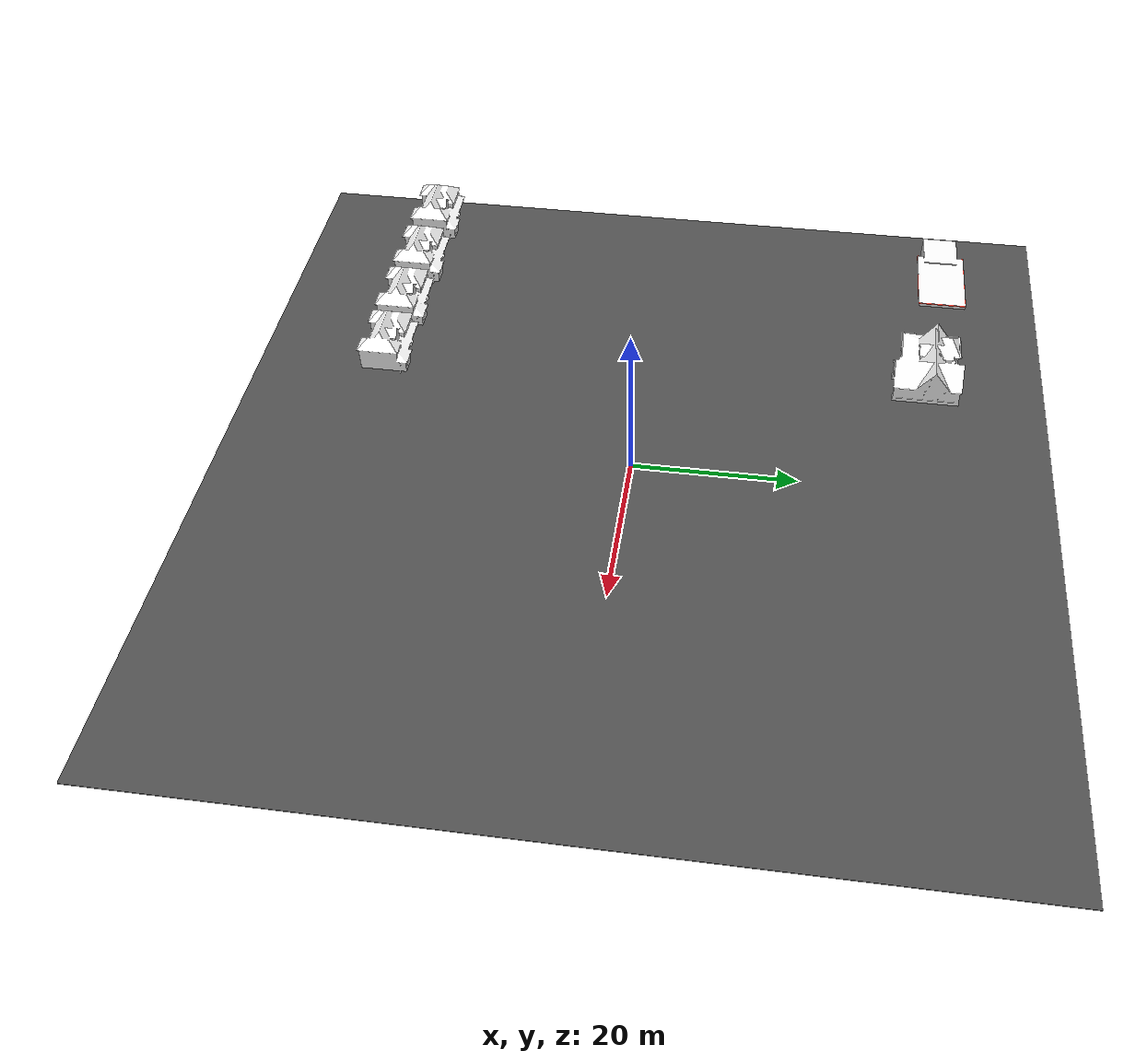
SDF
<sdf version="1.6">
 <world name="default">
  <light name="sun" type="directional">
   <pose>0 0 10 0 -0 0</pose>
   <diffuse>0.8 0.8 0.8 1</diffuse>
   <specular>0.1 0.1 0.1 1</specular>
   <attenuation>
    <range>1000</range>
    <constant>0.9</constant>
    <linear>0.01</linear>
    <quadratic>0.001</quadratic>
   </attenuation>
   <direction>-0.5 0.5 -1</direction>
  </light>
  <model name="asphalt_plane">
   <static>1</static>
   <link name="link">
    <collision name="collision"><geometry><box><size>100 100 0.1</size></box></geometry></collision>
    <visual name="visual">
     <cast_shadows>0</cast_shadows>
     <geometry><box><size>100 100 0.1</size></box></geometry>
     <material>
      <script>
       <uri>model://asphalt_plane/materials/scripts</uri>
       <uri>model://asphalt_plane/materials/textures</uri>
       <name>vrc/asphalt</name>
      </script>
     </material>
    </visual>
   </link>
  </model>
  <gravity>0 0 -9.8</gravity>
  <magnetic_field>6e-06 2.3e-05 -4.2e-05</magnetic_field>
  <atmosphere type="adiabatic"/>
  <physics name="default_physics" default="0" type="ode">
   <max_step_size>0.001</max_step_size>
   <real_time_factor>1</real_time_factor>
   <real_time_update_rate>1000</real_time_update_rate>
  </physics>
  <scene><ambient>0.4 0.4 0.4 1</ambient><background>0.7 0.7 0.7 1</background><shadows>1</shadows></scene>
  <spherical_coordinates>
   <surface_model>EARTH_WGS84</surface_model>
   <latitude_deg>0</latitude_deg>
   <longitude_deg>0</longitude_deg>
   <elevation>0</elevation>
   <heading_deg>0</heading_deg>
  </spherical_coordinates>
  <model name="House 2">
   <static>1</static>
   <link name="link">
    <collision name="collision">
     <geometry><mesh><uri>model://house_2/meshes/house_2.dae</uri><scale>1 1 1</scale></mesh></geometry>
    </collision>
    <visual name="visual">
     <geometry><mesh><uri>model://house_2/meshes/house_2.dae</uri><scale>1 1 1</scale></mesh></geometry>
     <material>
      <script>
       <uri>model://house_2/materials/scripts</uri>
       <uri>model://house_2/materials/textures</uri>
       <name>House_2/Diffuse</name>
      </script>
     </material>
    </visual>
   </link>
   <pose>-45.8392 -34.1866 0 0 -0 0</pose>
  </model>
  <model name="House 2_0">
   <static>1</static>
   <link name="link">
    <collision name="collision">
     <geometry><mesh><uri>model://house_2/meshes/house_2.dae</uri><scale>1 1 1</scale></mesh></geometry>
    </collision>
    <visual name="visual">
     <geometry><mesh><uri>model://house_2/meshes/house_2.dae</uri><scale>1 1 1</scale></mesh></geometry>
     <material>
      <script>
       <uri>model://house_2/materials/scripts</uri>
       <uri>model://house_2/materials/textures</uri>
       <name>House_2/Diffuse</name>
      </script>
     </material>
    </visual>
   </link>
   <pose>-35.9308 -34.2188 0 0 -0 0</pose>
  </model>
  <model name="House 2_1">
   <static>1</static>
   <link name="link">
    <collision name="collision">
     <geometry><mesh><uri>model://house_2/meshes/house_2.dae</uri><scale>1 1 1</scale></mesh></geometry>
    </collision>
    <visual name="visual">
     <geometry><mesh><uri>model://house_2/meshes/house_2.dae</uri><scale>1 1 1</scale></mesh></geometry>
     <material>
      <script>
       <uri>model://house_2/materials/scripts</uri>
       <uri>model://house_2/materials/textures</uri>
       <name>House_2/Diffuse</name>
      </script>
     </material>
    </visual>
   </link>
   <pose>-26.5317 -34.23 0 0 -0 0</pose>
  </model>
  <model name="House 2_2">
   <static>1</static>
   <link name="link">
    <collision name="collision">
     <geometry><mesh><uri>model://house_2/meshes/house_2.dae</uri><scale>1 1 1</scale></mesh></geometry>
    </collision>
    <visual name="visual">
     <geometry><mesh><uri>model://house_2/meshes/house_2.dae</uri><scale>1 1 1</scale></mesh></geometry>
     <material>
      <script>
       <uri>model://house_2/materials/scripts</uri>
       <uri>model://house_2/materials/textures</uri>
       <name>House_2/Diffuse</name>
      </script>
     </material>
    </visual>
   </link>
   <pose>-17.32 -34.1518 0 0 -0 0</pose>
  </model>
  <model name="House 1_1">
   <static>1</static>
   <link name="link">
    <collision name="collision">
     <geometry><mesh><uri>model://house_1/meshes/house_1.dae</uri><scale>1 1 1</scale></mesh></geometry>
    </collision>
    <visual name="visual">
     <geometry><mesh><uri>model://house_1/meshes/house_1.dae</uri><scale>1 1 1</scale></mesh></geometry>
     <material>
      <script>
       <uri>model://house_1/materials/scripts</uri>
       <uri>model://house_1/materials/textures</uri>
       <name>House_1/Diffuse</name>
      </script>
      <shader type="normal_map_object_space"><normal_map>House_1_Normal.png</normal_map></shader>
     </material>
    </visual>
   </link>
   <pose>-20.4554 35.5271 0 0 -0 0</pose>
  </model>
  <model name="Gas Station_0">
   <static>1</static>
   <link name="link">
    <collision name="collision">
     <geometry><mesh><uri>model://gas_station/meshes/gas_station.dae</uri><scale>1 1 1</scale></mesh></geometry>
    </collision>
    <visual name="visual">
     <geometry><mesh><uri>model://gas_station/meshes/gas_station.dae</uri><scale>1 1 1</scale></mesh></geometry>
     <material>
      <script>
       <uri>model://gas_station/materials/scripts</uri>
       <uri>model://gas_station/materials/textures</uri>
       <name>GasStation/Diffuse</name>
      </script>
      <shader type="normal_map_object_space"><normal_map>GasStation_Normal.png</normal_map></shader>
     </material>
    </visual>
   </link>
   <pose>-38.0697 37.1611 0 0 -0 0</pose>
  </model>
 </world>
</sdf>
